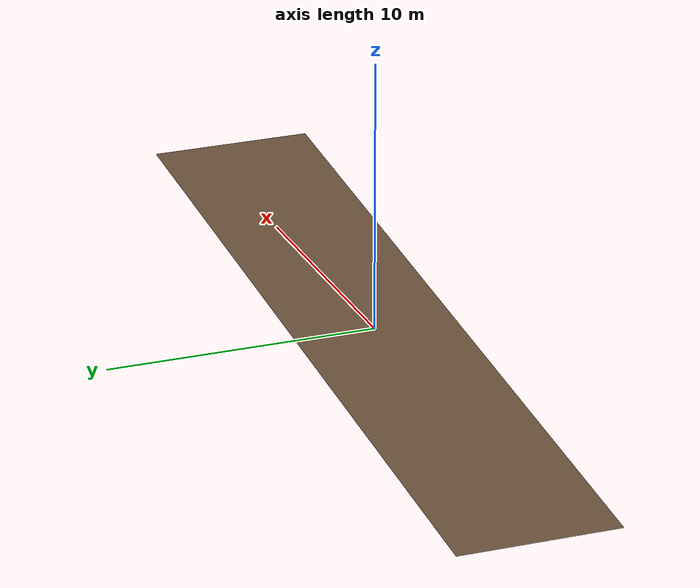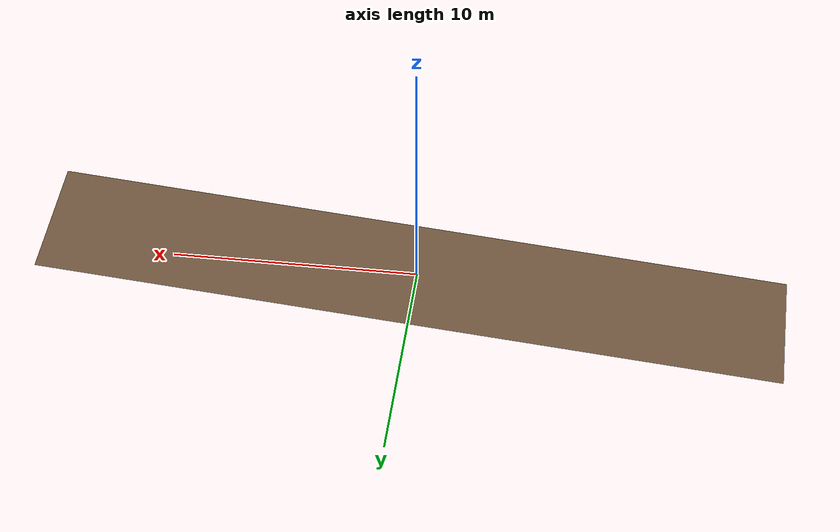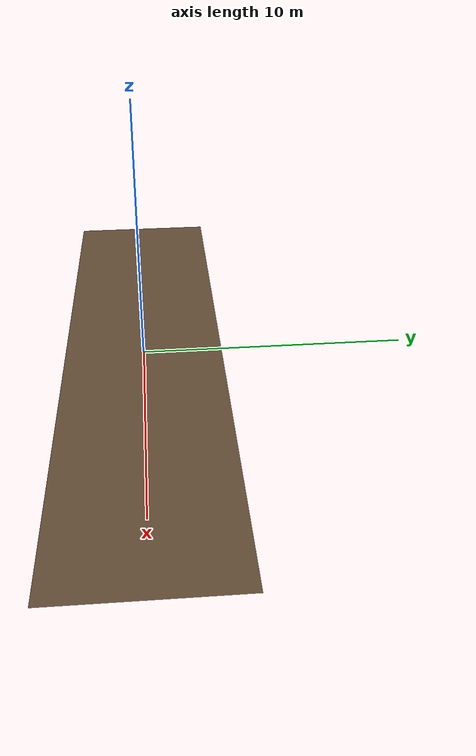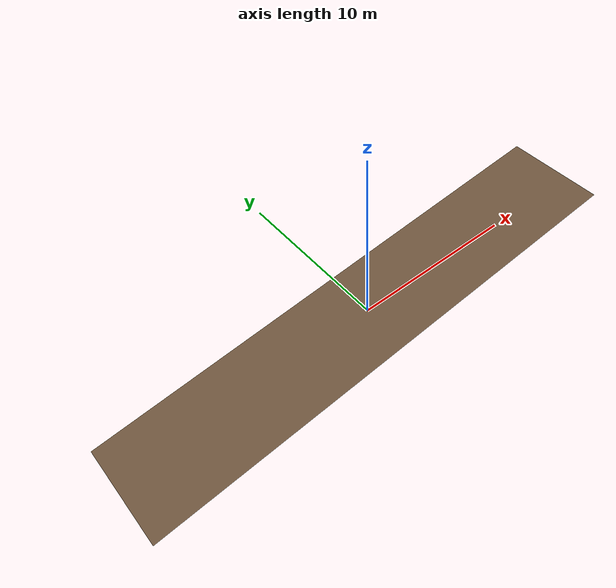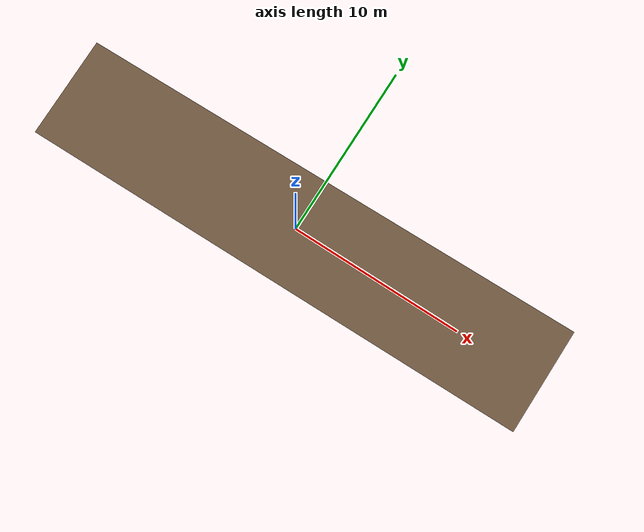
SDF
<?xml version="1.0"?>
<sdf version="1.8">
  <world name="ramp">

    <!-- A straight 10 % slope, to test traction and wheel slip on soil profiles.
         Made by agri_ugv_terrain; the robot starts at x = 0 facing uphill (+x). -->

    <!-- Physics: 1 ms time steps, running at real-time speed -->
    <physics name="1ms" type="ignored">
      <max_step_size>0.001</max_step_size>
      <real_time_factor>1.0</real_time_factor>
    </physics>

    <!-- Core systems: physics, accepting commands (e.g. spawning), sending the scene to the GUI -->
    <plugin filename="ignition-gazebo-physics-system"
            name="ignition::gazebo::systems::Physics"/>
    <plugin filename="ignition-gazebo-user-commands-system"
            name="ignition::gazebo::systems::UserCommands"/>
    <plugin filename="ignition-gazebo-scene-broadcaster-system"
            name="ignition::gazebo::systems::SceneBroadcaster"/>

    <light type="directional" name="sun">
      <cast_shadows>true</cast_shadows>
      <pose>0 0 10 0 0 0</pose>
      <diffuse>0.8 0.8 0.8 1</diffuse>
      <specular>0.2 0.2 0.2 1</specular>
      <direction>-0.5 0.1 -0.9</direction>
    </light>

    <!-- Ground: 30 x 6 m straight slope along x, 10 % grade (5.7 deg), height 0 at the origin -->
    <include>
      <uri>model://ramp</uri>
    </include>

  </world>
</sdf>

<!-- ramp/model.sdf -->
<sdf version="1.9">
  <model name="ramp">
    <static>true</static>
    <link name="link">
      <collision name="collision">
        <geometry>
          <mesh><uri>meshes/ramp.obj</uri></mesh>
        </geometry>
      </collision>
      <visual name="visual">
        <geometry>
          <mesh><uri>meshes/ramp.obj</uri></mesh>
        </geometry>
        <material>
          <ambient>0.45 0.35 0.25 1</ambient>
          <diffuse>0.45 0.35 0.25 1</diffuse>
        </material>
      </visual>
    </link>
  </model>
</sdf>
